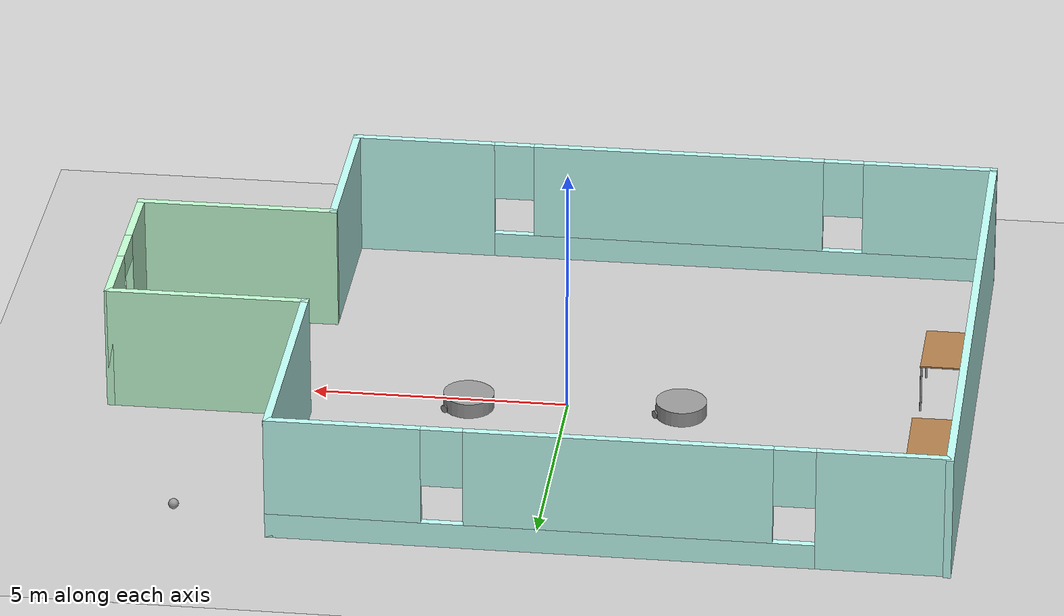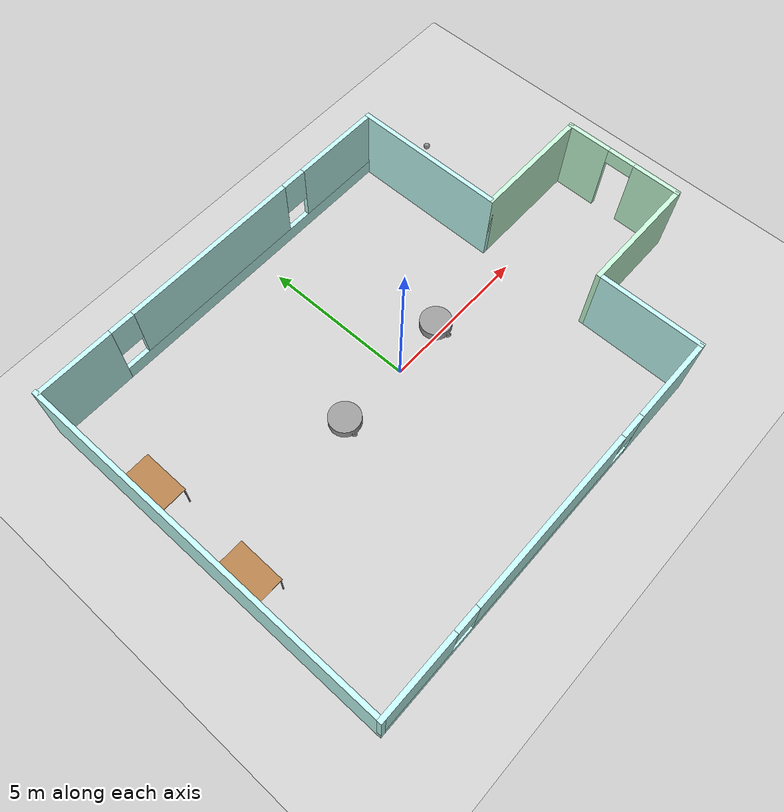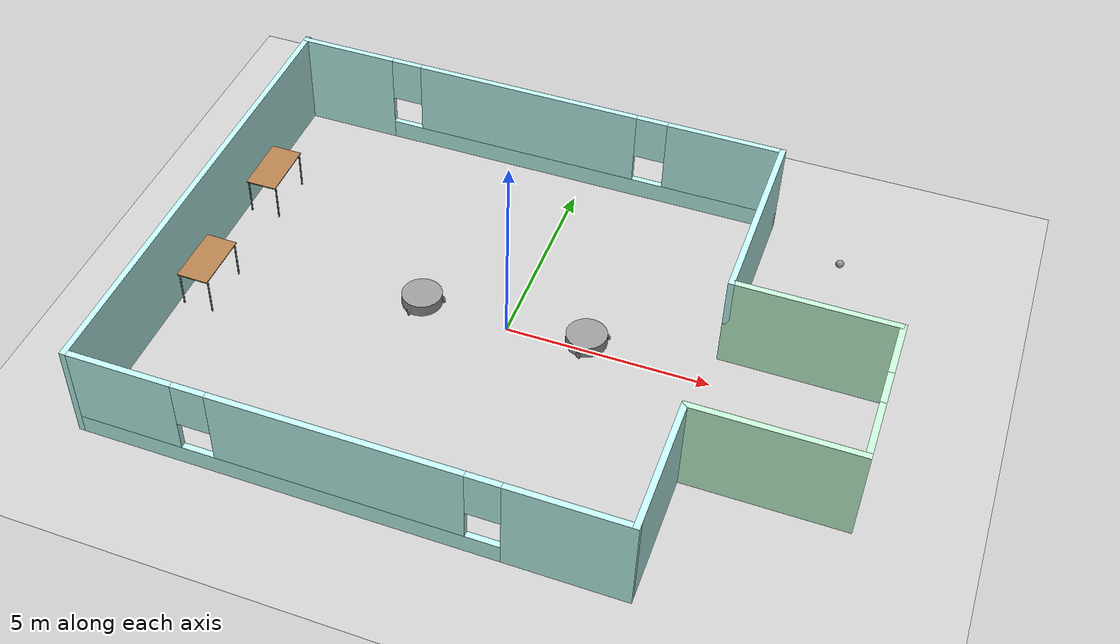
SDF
<sdf version="1.6">
 <world name="default">
  <plugin name="hello" filename="libhello.so"/>
  <light name="sun" type="directional">
   <pose>0 0 10 0 -0 0</pose>
   <diffuse>0.8 0.8 0.8 1</diffuse>
   <specular>0.2 0.2 0.2 1</specular>
   <attenuation>
    <range>1000</range>
    <constant>0.9</constant>
    <linear>0.01</linear>
    <quadratic>0.001</quadratic>
   </attenuation>
   <direction>-0.5 0.1 -0.9</direction>
  </light>
  <model name="ground_plane">
   <static>1</static>
   <link name="link">
    <collision name="collision">
     <geometry><plane><normal>0 0 1</normal><size>100 100</size></plane></geometry>
     <surface>
      <contact><collide_bitmask>65535</collide_bitmask></contact>
      <friction><ode><mu>100</mu><mu2>50</mu2></ode></friction>
     </surface>
    </collision>
    <visual name="visual">
     <cast_shadows>0</cast_shadows>
     <geometry><plane><normal>0 0 1</normal><size>100 100</size></plane></geometry>
     <material>
      <script><uri>file://media/materials/scripts/gazebo.material</uri><name>Gazebo/Grey</name></script>
     </material>
    </visual>
   </link>
  </model>
  <gravity>0 0 -9.8</gravity>
  <magnetic_field>6e-06 2.3e-05 -4.2e-05</magnetic_field>
  <atmosphere type="adiabatic"/>
  <physics name="default_physics" default="0" type="ode">
   <max_step_size>0.001</max_step_size>
   <real_time_factor>1</real_time_factor>
   <real_time_update_rate>1000</real_time_update_rate>
  </physics>
  <scene><ambient>0.4 0.4 0.4 1</ambient><background>0.7 0.7 0.7 1</background><shadows>1</shadows></scene>
  <spherical_coordinates>
   <surface_model>EARTH_WGS84</surface_model>
   <latitude_deg>0</latitude_deg>
   <longitude_deg>0</longitude_deg>
   <elevation>0</elevation>
   <heading_deg>0</heading_deg>
  </spherical_coordinates>
  <model name="myBuilding">
   <pose>0.50888 -0.21536 0 0 -0 0</pose>
   <link name="Wall_0">
    <pose>-1.925 6 0 0 -0 0</pose>
    <visual name="Wall_0_Visual_0">
     <pose>-5.21569 0 1.25 0 -0 0</pose>
     <geometry><box><size>2.56862 0.15 2.5</size></box></geometry>
     <material>
      <script><uri>file://media/materials/scripts/gazebo.material</uri><name>Gazebo/Grey</name></script>
      <ambient>0.756863 1 0.964706 1</ambient>
     </material>
     <meta><layer>0</layer></meta>
    </visual>
    <collision name="Wall_0_Collision_0">
     <geometry><box><size>2.56862 0.15 2.5</size></box></geometry>
     <pose>-5.21569 0 1.25 0 -0 0</pose>
    </collision>
    <visual name="Wall_0_Visual_1">
     <pose>1.28431 0 0.25 0 -0 0</pose>
     <geometry><box><size>10.4314 0.15 0.5</size></box></geometry>
     <material>
      <script><uri>file://media/materials/scripts/gazebo.material</uri><name>Gazebo/Grey</name></script>
      <ambient>0.756863 1 0.964706 1</ambient>
     </material>
     <meta><layer>0</layer></meta>
    </visual>
    <collision name="Wall_0_Collision_1">
     <geometry><box><size>10.4314 0.15 0.5</size></box></geometry>
     <pose>1.28431 0 0.25 0 -0 0</pose>
    </collision>
    <visual name="Wall_0_Visual_2">
     <pose>-0.206357 0 1.5 0 -0 0</pose>
     <geometry><box><size>5.85005 0.15 2</size></box></geometry>
     <material>
      <script><uri>file://media/materials/scripts/gazebo.material</uri><name>Gazebo/Grey</name></script>
      <ambient>0.756863 1 0.964706 1</ambient>
     </material>
     <meta><layer>0</layer></meta>
    </visual>
    <collision name="Wall_0_Collision_2">
     <geometry><box><size>5.85005 0.15 2</size></box></geometry>
     <pose>-0.206357 0 1.5 0 -0 0</pose>
    </collision>
    <visual name="Wall_0_Visual_3">
     <pose>5.00933 0 1.5 0 -0 0</pose>
     <geometry><box><size>2.98133 0.15 2</size></box></geometry>
     <material>
      <script><uri>file://media/materials/scripts/gazebo.material</uri><name>Gazebo/Grey</name></script>
      <ambient>0.756863 1 0.964706 1</ambient>
     </material>
     <meta><layer>0</layer></meta>
    </visual>
    <collision name="Wall_0_Collision_3">
     <geometry><box><size>2.98133 0.15 2</size></box></geometry>
     <pose>5.00933 0 1.5 0 -0 0</pose>
    </collision>
    <visual name="Wall_0_Visual_4">
     <pose>-3.53138 0 1.9 0 -0 0</pose>
     <geometry><box><size>0.8 0.15 1.2</size></box></geometry>
     <material>
      <script><uri>file://media/materials/scripts/gazebo.material</uri><name>Gazebo/Grey</name></script>
      <ambient>0.756863 1 0.964706 1</ambient>
     </material>
     <meta><layer>0</layer></meta>
    </visual>
    <collision name="Wall_0_Collision_4">
     <geometry><box><size>0.8 0.15 1.2</size></box></geometry>
     <pose>-3.53138 0 1.9 0 -0 0</pose>
    </collision>
    <visual name="Wall_0_Visual_5">
     <pose>3.11867 0 1.9 0 -0 0</pose>
     <geometry><box><size>0.8 0.15 1.2</size></box></geometry>
     <material>
      <script><uri>file://media/materials/scripts/gazebo.material</uri><name>Gazebo/Grey</name></script>
      <ambient>0.756863 1 0.964706 1</ambient>
     </material>
     <meta><layer>0</layer></meta>
    </visual>
    <collision name="Wall_0_Collision_5">
     <geometry><box><size>0.8 0.15 1.2</size></box></geometry>
     <pose>3.11867 0 1.9 0 -0 0</pose>
    </collision>
   </link>
   <link name="Wall_1">
    <collision name="Wall_1_Collision">
     <geometry><box><size>5 0.15 2.5</size></box></geometry>
     <pose>0 0 1.25 0 -0 0</pose>
    </collision>
    <visual name="Wall_1_Visual">
     <pose>0 0 1.25 0 -0 0</pose>
     <geometry><box><size>5 0.15 2.5</size></box></geometry>
     <material>
      <script><uri>file://media/materials/scripts/gazebo.material</uri><name>Gazebo/Grey</name></script>
      <ambient>0.756863 1 0.964706 1</ambient>
     </material>
     <meta><layer>0</layer></meta>
    </visual>
    <pose>4.5 3.575 0 0 0 -1.5708</pose>
   </link>
   <link name="Wall_2">
    <collision name="Wall_2_Collision">
     <geometry><box><size>4 0.15 2.5</size></box></geometry>
     <pose>0 0 1.25 0 -0 0</pose>
    </collision>
    <visual name="Wall_2_Visual">
     <pose>0 0 1.25 0 -0 0</pose>
     <geometry><box><size>4 0.15 2.5</size></box></geometry>
     <material>
      <script><uri>file://media/materials/scripts/gazebo.material</uri><name>Gazebo/Grey</name></script>
      <ambient>0.768627 1 0.835294 1</ambient>
     </material>
     <meta><layer>0</layer></meta>
    </visual>
    <pose>6.425 1.15 0 0 -0 0</pose>
   </link>
   <link name="Wall_3">
    <pose>8.35 -0.774999 0 0 0 -1.5708</pose>
    <visual name="Wall_3_Visual_0">
     <pose>-1.24503 0 1.25 0 -0 0</pose>
     <geometry><box><size>1.50994 0.15 2.5</size></box></geometry>
     <material>
      <script><uri>file://media/materials/scripts/gazebo.material</uri><name>Gazebo/Grey</name></script>
      <ambient>0.768627 1 0.835294 1</ambient>
     </material>
     <meta><layer>0</layer></meta>
    </visual>
    <collision name="Wall_3_Collision_0">
     <geometry><box><size>1.50994 0.15 2.5</size></box></geometry>
     <pose>-1.24503 0 1.25 0 -0 0</pose>
    </collision>
    <visual name="Wall_3_Visual_1">
     <pose>1.20497 0 1.25 0 -0 0</pose>
     <geometry><box><size>1.59006 0.15 2.5</size></box></geometry>
     <material>
      <script><uri>file://media/materials/scripts/gazebo.material</uri><name>Gazebo/Grey</name></script>
      <ambient>0.768627 1 0.835294 1</ambient>
     </material>
     <meta><layer>0</layer></meta>
    </visual>
    <collision name="Wall_3_Collision_1">
     <geometry><box><size>1.59006 0.15 2.5</size></box></geometry>
     <pose>1.20497 0 1.25 0 -0 0</pose>
    </collision>
    <visual name="Wall_3_Visual_2">
     <pose>-0.040058 0 2.25 0 -0 0</pose>
     <geometry><box><size>0.9 0.15 0.5</size></box></geometry>
     <material>
      <script><uri>file://media/materials/scripts/gazebo.material</uri><name>Gazebo/Grey</name></script>
      <ambient>0.768627 1 0.835294 1</ambient>
     </material>
     <meta><layer>0</layer></meta>
    </visual>
    <collision name="Wall_3_Collision_2">
     <geometry><box><size>0.9 0.15 0.5</size></box></geometry>
     <pose>-0.040058 0 2.25 0 -0 0</pose>
    </collision>
   </link>
   <link name="Wall_4">
    <collision name="Wall_4_Collision">
     <geometry><box><size>4 0.15 2.5</size></box></geometry>
     <pose>0 0 1.25 0 -0 0</pose>
    </collision>
    <visual name="Wall_4_Visual">
     <pose>0 0 1.25 0 -0 0</pose>
     <geometry><box><size>4 0.15 2.5</size></box></geometry>
     <material>
      <script><uri>file://media/materials/scripts/gazebo.material</uri><name>Gazebo/Grey</name></script>
      <ambient>0.768627 1 0.835294 1</ambient>
     </material>
     <meta><layer>0</layer></meta>
    </visual>
    <pose>6.425 -2.7 0 0 -0 3.14159</pose>
   </link>
   <link name="Wall_5">
    <collision name="Wall_5_Collision">
     <geometry><box><size>3.5 0.15 2.5</size></box></geometry>
     <pose>0 0 1.25 0 -0 0</pose>
    </collision>
    <visual name="Wall_5_Visual">
     <pose>0 0 1.25 0 -0 0</pose>
     <geometry><box><size>3.5 0.15 2.5</size></box></geometry>
     <material>
      <script><uri>file://media/materials/scripts/gazebo.material</uri><name>Gazebo/Grey</name></script>
      <ambient>0.756863 1 0.964706 1</ambient>
     </material>
     <meta><layer>0</layer></meta>
    </visual>
    <pose>4.5 -4.375 0 0 0 -1.5708</pose>
   </link>
   <link name="Wall_6">
    <pose>-1.925 -6.05 0 0 -0 3.14159</pose>
    <visual name="Wall_6_Visual_0">
     <pose>-5.06253 0 1.25 0 -0 0</pose>
     <geometry><box><size>2.87493 0.15 2.5</size></box></geometry>
     <material>
      <script><uri>file://media/materials/scripts/gazebo.material</uri><name>Gazebo/Grey</name></script>
      <ambient>0.756863 1 0.964706 1</ambient>
     </material>
     <meta><layer>0</layer></meta>
    </visual>
    <collision name="Wall_6_Collision_0">
     <geometry><box><size>2.87493 0.15 2.5</size></box></geometry>
     <pose>-5.06253 0 1.25 0 -0 0</pose>
    </collision>
    <visual name="Wall_6_Visual_1">
     <pose>1.43747 0 0.25 0 -0 0</pose>
     <geometry><box><size>10.1251 0.15 0.5</size></box></geometry>
     <material>
      <script><uri>file://media/materials/scripts/gazebo.material</uri><name>Gazebo/Grey</name></script>
      <ambient>0.756863 1 0.964706 1</ambient>
     </material>
     <meta><layer>0</layer></meta>
    </visual>
    <collision name="Wall_6_Collision_1">
     <geometry><box><size>10.1251 0.15 0.5</size></box></geometry>
     <pose>1.43747 0 0.25 0 -0 0</pose>
    </collision>
    <visual name="Wall_6_Visual_2">
     <pose>0.099956 0 1.5 0 -0 0</pose>
     <geometry><box><size>5.85005 0.15 2</size></box></geometry>
     <material>
      <script><uri>file://media/materials/scripts/gazebo.material</uri><name>Gazebo/Grey</name></script>
      <ambient>0.756863 1 0.964706 1</ambient>
     </material>
     <meta><layer>0</layer></meta>
    </visual>
    <collision name="Wall_6_Collision_2">
     <geometry><box><size>5.85005 0.15 2</size></box></geometry>
     <pose>0.099956 0 1.5 0 -0 0</pose>
    </collision>
    <visual name="Wall_6_Visual_3">
     <pose>5.16249 0 1.5 0 -0 0</pose>
     <geometry><box><size>2.67502 0.15 2</size></box></geometry>
     <material>
      <script><uri>file://media/materials/scripts/gazebo.material</uri><name>Gazebo/Grey</name></script>
      <ambient>0.756863 1 0.964706 1</ambient>
     </material>
     <meta><layer>0</layer></meta>
    </visual>
    <collision name="Wall_6_Collision_3">
     <geometry><box><size>2.67502 0.15 2</size></box></geometry>
     <pose>5.16249 0 1.5 0 -0 0</pose>
    </collision>
    <visual name="Wall_6_Visual_4">
     <pose>-3.22507 0 1.9 0 -0 0</pose>
     <geometry><box><size>0.8 0.15 1.2</size></box></geometry>
     <material>
      <script><uri>file://media/materials/scripts/gazebo.material</uri><name>Gazebo/Grey</name></script>
      <ambient>0.756863 1 0.964706 1</ambient>
     </material>
     <meta><layer>0</layer></meta>
    </visual>
    <collision name="Wall_6_Collision_4">
     <geometry><box><size>0.8 0.15 1.2</size></box></geometry>
     <pose>-3.22507 0 1.9 0 -0 0</pose>
    </collision>
    <visual name="Wall_6_Visual_5">
     <pose>3.42498 0 1.9 0 -0 0</pose>
     <geometry><box><size>0.8 0.15 1.2</size></box></geometry>
     <material>
      <script><uri>file://media/materials/scripts/gazebo.material</uri><name>Gazebo/Grey</name></script>
      <ambient>0.756863 1 0.964706 1</ambient>
     </material>
     <meta><layer>0</layer></meta>
    </visual>
    <collision name="Wall_6_Collision_5">
     <geometry><box><size>0.8 0.15 1.2</size></box></geometry>
     <pose>3.42498 0 1.9 0 -0 0</pose>
    </collision>
   </link>
   <link name="Wall_7">
    <collision name="Wall_7_Collision">
     <geometry><box><size>12.25 0.15 2.5</size></box></geometry>
     <pose>0 0 1.25 0 -0 0</pose>
    </collision>
    <visual name="Wall_7_Visual">
     <pose>0 0 1.25 0 -0 0</pose>
     <geometry><box><size>12.25 0.15 2.5</size></box></geometry>
     <material>
      <script><uri>file://media/materials/scripts/gazebo.material</uri><name>Gazebo/Grey</name></script>
      <ambient>0.756863 1 0.964706 1</ambient>
     </material>
     <meta><layer>0</layer></meta>
    </visual>
    <pose>-8.35 0 0 0 -0 1.5708</pose>
   </link>
   <static>1</static>
  </model>
  <model name="table">
   <static>1</static>
   <link name="link">
    <collision name="surface">
     <pose>0 0 1 0 -0 0</pose>
     <geometry><box><size>1.5 0.8 0.03</size></box></geometry>
     <surface><friction><ode><mu>0.6</mu><mu2>0.6</mu2></ode></friction></surface>
    </collision>
    <visual name="visual1">
     <pose>0 0 1 0 -0 0</pose>
     <geometry><box><size>1.5 0.8 0.03</size></box></geometry>
     <material>
      <script><uri>file://media/materials/scripts/gazebo.material</uri><name>Gazebo/Wood</name></script>
     </material>
    </visual>
    <collision name="front_left_leg">
     <pose>0.68 0.38 0.5 0 -0 0</pose>
     <geometry><cylinder><radius>0.02</radius><length>1</length></cylinder></geometry>
    </collision>
    <visual name="front_left_leg">
     <pose>0.68 0.38 0.5 0 -0 0</pose>
     <geometry><cylinder><radius>0.02</radius><length>1</length></cylinder></geometry>
     <material>
      <script><uri>file://media/materials/scripts/gazebo.material</uri><name>Gazebo/Grey</name></script>
     </material>
    </visual>
    <collision name="front_right_leg">
     <pose>0.68 -0.38 0.5 0 -0 0</pose>
     <geometry><cylinder><radius>0.02</radius><length>1</length></cylinder></geometry>
    </collision>
    <visual name="front_right_leg">
     <pose>0.68 -0.38 0.5 0 -0 0</pose>
     <geometry><cylinder><radius>0.02</radius><length>1</length></cylinder></geometry>
     <material>
      <script><uri>file://media/materials/scripts/gazebo.material</uri><name>Gazebo/Grey</name></script>
     </material>
    </visual>
    <collision name="back_right_leg">
     <pose>-0.68 -0.38 0.5 0 -0 0</pose>
     <geometry><cylinder><radius>0.02</radius><length>1</length></cylinder></geometry>
    </collision>
    <visual name="back_right_leg">
     <pose>-0.68 -0.38 0.5 0 -0 0</pose>
     <geometry><cylinder><radius>0.02</radius><length>1</length></cylinder></geometry>
     <material>
      <script><uri>file://media/materials/scripts/gazebo.material</uri><name>Gazebo/Grey</name></script>
     </material>
    </visual>
    <collision name="back_left_leg">
     <pose>-0.68 0.38 0.5 0 -0 0</pose>
     <geometry><cylinder><radius>0.02</radius><length>1</length></cylinder></geometry>
    </collision>
    <visual name="back_left_leg">
     <pose>-0.68 0.38 0.5 0 -0 0</pose>
     <geometry><cylinder><radius>0.02</radius><length>1</length></cylinder></geometry>
     <material>
      <script><uri>file://media/materials/scripts/gazebo.material</uri><name>Gazebo/Grey</name></script>
     </material>
    </visual>
   </link>
   <pose>-7.2407 2.31732 0 0 -0 1.57218</pose>
  </model>
  <model name="table_0">
   <static>1</static>
   <link name="link">
    <collision name="surface">
     <pose>0 0 1 0 -0 0</pose>
     <geometry><box><size>1.5 0.8 0.03</size></box></geometry>
     <surface><friction><ode><mu>0.6</mu><mu2>0.6</mu2></ode></friction></surface>
    </collision>
    <visual name="visual1">
     <pose>0 0 1 0 -0 0</pose>
     <geometry><box><size>1.5 0.8 0.03</size></box></geometry>
     <material>
      <script><uri>file://media/materials/scripts/gazebo.material</uri><name>Gazebo/Wood</name></script>
     </material>
    </visual>
    <collision name="front_left_leg">
     <pose>0.68 0.38 0.5 0 -0 0</pose>
     <geometry><cylinder><radius>0.02</radius><length>1</length></cylinder></geometry>
    </collision>
    <visual name="front_left_leg">
     <pose>0.68 0.38 0.5 0 -0 0</pose>
     <geometry><cylinder><radius>0.02</radius><length>1</length></cylinder></geometry>
     <material>
      <script><uri>file://media/materials/scripts/gazebo.material</uri><name>Gazebo/Grey</name></script>
     </material>
    </visual>
    <collision name="front_right_leg">
     <pose>0.68 -0.38 0.5 0 -0 0</pose>
     <geometry><cylinder><radius>0.02</radius><length>1</length></cylinder></geometry>
    </collision>
    <visual name="front_right_leg">
     <pose>0.68 -0.38 0.5 0 -0 0</pose>
     <geometry><cylinder><radius>0.02</radius><length>1</length></cylinder></geometry>
     <material>
      <script><uri>file://media/materials/scripts/gazebo.material</uri><name>Gazebo/Grey</name></script>
     </material>
    </visual>
    <collision name="back_right_leg">
     <pose>-0.68 -0.38 0.5 0 -0 0</pose>
     <geometry><cylinder><radius>0.02</radius><length>1</length></cylinder></geometry>
    </collision>
    <visual name="back_right_leg">
     <pose>-0.68 -0.38 0.5 0 -0 0</pose>
     <geometry><cylinder><radius>0.02</radius><length>1</length></cylinder></geometry>
     <material>
      <script><uri>file://media/materials/scripts/gazebo.material</uri><name>Gazebo/Grey</name></script>
     </material>
    </visual>
    <collision name="back_left_leg">
     <pose>-0.68 0.38 0.5 0 -0 0</pose>
     <geometry><cylinder><radius>0.02</radius><length>1</length></cylinder></geometry>
    </collision>
    <visual name="back_left_leg">
     <pose>-0.68 0.38 0.5 0 -0 0</pose>
     <geometry><cylinder><radius>0.02</radius><length>1</length></cylinder></geometry>
     <material>
      <script><uri>file://media/materials/scripts/gazebo.material</uri><name>Gazebo/Grey</name></script>
     </material>
    </visual>
   </link>
   <pose>-7.24339 -1.28587 0 0 0 -1.58123</pose>
  </model>
  <model name="VacuumRobot">
   <link name="link_0">
    <pose>-0.010873 -2.28364 0.553866 0 -0 0</pose>
    <inertial>
     <mass>1</mass>
     <inertia><ixx>0.145833</ixx><ixy>0</ixy><ixz>0</ixz><iyy>0.145833</iyy><iyz>0</iyz><izz>0.125</izz></inertia>
    </inertial>
    <visual name="visual">
     <geometry><cylinder><radius>0.5</radius><length>0.3</length></cylinder></geometry>
     <material>
      <lighting>1</lighting>
      <script><uri>file://media/materials/scripts/gazebo.material</uri><name>Gazebo/Grey</name></script>
      <shader type="pixel"><normal_map>__default__</normal_map></shader>
      <ambient>0.3 0.3 0.3 1</ambient>
      <diffuse>0.7 0.7 0.7 1</diffuse>
      <specular>0.01 0.01 0.01 1</specular>
      <emissive>0 0 0 1</emissive>
     </material>
    </visual>
    <collision name="collision">
     <geometry><cylinder><radius>0.5</radius><length>0.3</length></cylinder></geometry>
     <surface>
      <friction>
       <ode><mu>1</mu><mu2>1</mu2><fdir1>0 0 0</fdir1><slip1>0</slip1><slip2>0</slip2></ode>
       <torsional>
        <coefficient>1</coefficient>
        <patch_radius>0</patch_radius>
        <surface_radius>0</surface_radius>
        <use_patch_radius>1</use_patch_radius>
        <ode><slip>0</slip></ode>
       </torsional>
      </friction>
      <bounce><restitution_coefficient>0</restitution_coefficient><threshold>1e+06</threshold></bounce>
      <contact>
       <collide_without_contact>0</collide_without_contact>
       <collide_without_contact_bitmask>1</collide_without_contact_bitmask>
       <collide_bitmask>1</collide_bitmask>
       <ode>
        <soft_cfm>0</soft_cfm>
        <soft_erp>0.2</soft_erp>
        <kp>1e+13</kp>
        <kd>1</kd>
        <max_vel>0.01</max_vel>
        <min_depth>0</min_depth>
       </ode>
       <bullet>
        <split_impulse>1</split_impulse>
        <split_impulse_penetration_threshold>-0.01</split_impulse_penetration_threshold>
        <soft_cfm>0</soft_cfm>
        <soft_erp>0.2</soft_erp>
        <kp>1e+13</kp>
        <kd>1</kd>
       </bullet>
      </contact>
     </surface>
    </collision>
   </link>
   <link name="link_2">
    <pose>-0.47356 -2.54265 0.466165 0 -1.54019 0</pose>
    <inertial>
     <mass>0.00089413</mass>
     <inertia>
      <ixx>1.48e-06</ixx>
      <ixy>0</ixy>
      <ixz>0</ixz>
      <iyy>1.48e-06</iyy>
      <iyz>0</iyz>
      <izz>2.76e-06</izz>
     </inertia>
    </inertial>
    <visual name="visual">
     <geometry><cylinder><radius>0.0786342</radius><length>0.0361282</length></cylinder></geometry>
     <material>
      <lighting>1</lighting>
      <script><uri>file://media/materials/scripts/gazebo.material</uri><name>Gazebo/Grey</name></script>
      <shader type="pixel"><normal_map>__default__</normal_map></shader>
      <ambient>0.3 0.3 0.3 1</ambient>
      <diffuse>0.7 0.7 0.7 1</diffuse>
      <specular>0.01 0.01 0.01 1</specular>
      <emissive>0 0 0 1</emissive>
     </material>
    </visual>
    <collision name="collision">
     <geometry><cylinder><radius>0.078634</radius><length>0.036128</length></cylinder></geometry>
     <surface>
      <friction>
       <ode><mu>1</mu><mu2>1</mu2><fdir1>0 0 0</fdir1><slip1>0</slip1><slip2>0</slip2></ode>
       <torsional>
        <coefficient>1</coefficient>
        <patch_radius>0</patch_radius>
        <surface_radius>0</surface_radius>
        <use_patch_radius>1</use_patch_radius>
        <ode><slip>0</slip></ode>
       </torsional>
      </friction>
      <bounce><restitution_coefficient>0</restitution_coefficient><threshold>1e+06</threshold></bounce>
      <contact>
       <collide_without_contact>0</collide_without_contact>
       <collide_without_contact_bitmask>1</collide_without_contact_bitmask>
       <collide_bitmask>1</collide_bitmask>
       <ode>
        <soft_cfm>0</soft_cfm>
        <soft_erp>0.2</soft_erp>
        <kp>1e+13</kp>
        <kd>1</kd>
        <max_vel>0.01</max_vel>
        <min_depth>0</min_depth>
       </ode>
       <bullet>
        <split_impulse>1</split_impulse>
        <split_impulse_penetration_threshold>-0.01</split_impulse_penetration_threshold>
        <soft_cfm>0</soft_cfm>
        <soft_erp>0.2</soft_erp>
        <kp>1e+13</kp>
        <kd>1</kd>
       </bullet>
      </contact>
     </surface>
    </collision>
   </link>
   <link name="link_2_clone">
    <pose>0.468974 -2.49653 0.46497 0 -1.54019 0</pose>
    <inertial>
     <mass>0.00089413</mass>
     <inertia>
      <ixx>1.48e-06</ixx>
      <ixy>0</ixy>
      <ixz>0</ixz>
      <iyy>1.48e-06</iyy>
      <iyz>0</iyz>
      <izz>2.76e-06</izz>
     </inertia>
    </inertial>
    <visual name="visual">
     <geometry><cylinder><radius>0.0786342</radius><length>0.0361282</length></cylinder></geometry>
     <material>
      <lighting>1</lighting>
      <script><uri>file://media/materials/scripts/gazebo.material</uri><name>Gazebo/Grey</name></script>
      <shader type="pixel"><normal_map>__default__</normal_map></shader>
      <ambient>0.3 0.3 0.3 1</ambient>
      <diffuse>0.7 0.7 0.7 1</diffuse>
      <specular>0.01 0.01 0.01 1</specular>
      <emissive>0 0 0 1</emissive>
     </material>
    </visual>
    <collision name="collision">
     <geometry><cylinder><radius>0.078634</radius><length>0.036128</length></cylinder></geometry>
     <surface>
      <friction>
       <ode><mu>1</mu><mu2>1</mu2><fdir1>0 0 0</fdir1><slip1>0</slip1><slip2>0</slip2></ode>
       <torsional>
        <coefficient>1</coefficient>
        <patch_radius>0</patch_radius>
        <surface_radius>0</surface_radius>
        <use_patch_radius>1</use_patch_radius>
        <ode><slip>0</slip></ode>
       </torsional>
      </friction>
      <bounce><restitution_coefficient>0</restitution_coefficient><threshold>1e+06</threshold></bounce>
      <contact>
       <collide_without_contact>0</collide_without_contact>
       <collide_without_contact_bitmask>1</collide_without_contact_bitmask>
       <collide_bitmask>1</collide_bitmask>
       <ode>
        <soft_cfm>0</soft_cfm>
        <soft_erp>0.2</soft_erp>
        <kp>1e+13</kp>
        <kd>1</kd>
        <max_vel>0.01</max_vel>
        <min_depth>0</min_depth>
       </ode>
       <bullet>
        <split_impulse>1</split_impulse>
        <split_impulse_penetration_threshold>-0.01</split_impulse_penetration_threshold>
        <soft_cfm>0</soft_cfm>
        <soft_erp>0.2</soft_erp>
        <kp>1e+13</kp>
        <kd>1</kd>
       </bullet>
      </contact>
     </surface>
    </collision>
   </link>
   <joint name="link_0_JOINT_5" type="revolute">
    <parent>link_0</parent>
    <child>link_2</child>
    <axis>
     <xyz>0 0 1</xyz>
     <use_parent_model_frame>0</use_parent_model_frame>
     <limit>
      <lower>-1.79769e+308</lower>
      <upper>1.79769e+308</upper>
      <effort>-1</effort>
      <velocity>-1</velocity>
     </limit>
     <dynamics>
      <spring_reference>0</spring_reference>
      <spring_stiffness>0</spring_stiffness>
      <damping>0</damping>
      <friction>0</friction>
     </dynamics>
    </axis>
    <physics>
     <ode><limit><cfm>0</cfm><erp>0.2</erp></limit><suspension><cfm>0</cfm><erp>0.2</erp></suspension></ode>
    </physics>
   </joint>
   <joint name="link_0_JOINT_6" type="revolute">
    <parent>link_0</parent>
    <child>link_2_clone</child>
    <axis>
     <xyz>1 0 0</xyz>
     <use_parent_model_frame>0</use_parent_model_frame>
     <limit>
      <lower>-1.79769e+308</lower>
      <upper>1.79769e+308</upper>
      <effort>-1</effort>
      <velocity>-1</velocity>
     </limit>
     <dynamics>
      <spring_reference>0</spring_reference>
      <spring_stiffness>0</spring_stiffness>
      <damping>0</damping>
     </dynamics>
    </axis>
    <physics>
     <ode><limit><cfm>0</cfm><erp>0.2</erp></limit><suspension><cfm>0</cfm><erp>0.2</erp></suspension></ode>
    </physics>
   </joint>
   <static>0</static>
   <pose>-3.82456 1.74891 -0.444772 -0.023049 -0.002526 0.777225</pose>
  </model>
  <model name="VacuumRobot_0">
   <link name="link_0">
    <pose>-0.010873 -2.28364 0.553866 0 -0 0</pose>
    <inertial>
     <mass>1</mass>
     <inertia><ixx>0.145833</ixx><ixy>0</ixy><ixz>0</ixz><iyy>0.145833</iyy><iyz>0</iyz><izz>0.125</izz></inertia>
    </inertial>
    <visual name="visual">
     <geometry><cylinder><radius>0.5</radius><length>0.3</length></cylinder></geometry>
     <material>
      <lighting>1</lighting>
      <script><uri>file://media/materials/scripts/gazebo.material</uri><name>Gazebo/Grey</name></script>
      <shader type="pixel"><normal_map>__default__</normal_map></shader>
      <ambient>0.3 0.3 0.3 1</ambient>
      <diffuse>0.7 0.7 0.7 1</diffuse>
      <specular>0.01 0.01 0.01 1</specular>
      <emissive>0 0 0 1</emissive>
     </material>
    </visual>
    <collision name="collision">
     <geometry><cylinder><radius>0.5</radius><length>0.3</length></cylinder></geometry>
     <surface>
      <friction>
       <ode><mu>1</mu><mu2>1</mu2><fdir1>0 0 0</fdir1><slip1>0</slip1><slip2>0</slip2></ode>
       <torsional>
        <coefficient>1</coefficient>
        <patch_radius>0</patch_radius>
        <surface_radius>0</surface_radius>
        <use_patch_radius>1</use_patch_radius>
        <ode><slip>0</slip></ode>
       </torsional>
      </friction>
      <bounce><restitution_coefficient>0</restitution_coefficient><threshold>1e+06</threshold></bounce>
      <contact>
       <collide_without_contact>0</collide_without_contact>
       <collide_without_contact_bitmask>1</collide_without_contact_bitmask>
       <collide_bitmask>1</collide_bitmask>
       <ode>
        <soft_cfm>0</soft_cfm>
        <soft_erp>0.2</soft_erp>
        <kp>1e+13</kp>
        <kd>1</kd>
        <max_vel>0.01</max_vel>
        <min_depth>0</min_depth>
       </ode>
       <bullet>
        <split_impulse>1</split_impulse>
        <split_impulse_penetration_threshold>-0.01</split_impulse_penetration_threshold>
        <soft_cfm>0</soft_cfm>
        <soft_erp>0.2</soft_erp>
        <kp>1e+13</kp>
        <kd>1</kd>
       </bullet>
      </contact>
     </surface>
    </collision>
   </link>
   <link name="link_2">
    <pose>-0.47356 -2.54265 0.466165 0 -1.54019 0</pose>
    <inertial>
     <mass>0.00089413</mass>
     <inertia>
      <ixx>1.48e-06</ixx>
      <ixy>0</ixy>
      <ixz>0</ixz>
      <iyy>1.48e-06</iyy>
      <iyz>0</iyz>
      <izz>2.76e-06</izz>
     </inertia>
    </inertial>
    <visual name="visual">
     <geometry><cylinder><radius>0.0786342</radius><length>0.0361282</length></cylinder></geometry>
     <material>
      <lighting>1</lighting>
      <script><uri>file://media/materials/scripts/gazebo.material</uri><name>Gazebo/Grey</name></script>
      <shader type="pixel"><normal_map>__default__</normal_map></shader>
      <ambient>0.3 0.3 0.3 1</ambient>
      <diffuse>0.7 0.7 0.7 1</diffuse>
      <specular>0.01 0.01 0.01 1</specular>
      <emissive>0 0 0 1</emissive>
     </material>
    </visual>
    <collision name="collision">
     <geometry><cylinder><radius>0.078634</radius><length>0.036128</length></cylinder></geometry>
     <surface>
      <friction>
       <ode><mu>1</mu><mu2>1</mu2><fdir1>0 0 0</fdir1><slip1>0</slip1><slip2>0</slip2></ode>
       <torsional>
        <coefficient>1</coefficient>
        <patch_radius>0</patch_radius>
        <surface_radius>0</surface_radius>
        <use_patch_radius>1</use_patch_radius>
        <ode><slip>0</slip></ode>
       </torsional>
      </friction>
      <bounce><restitution_coefficient>0</restitution_coefficient><threshold>1e+06</threshold></bounce>
      <contact>
       <collide_without_contact>0</collide_without_contact>
       <collide_without_contact_bitmask>1</collide_without_contact_bitmask>
       <collide_bitmask>1</collide_bitmask>
       <ode>
        <soft_cfm>0</soft_cfm>
        <soft_erp>0.2</soft_erp>
        <kp>1e+13</kp>
        <kd>1</kd>
        <max_vel>0.01</max_vel>
        <min_depth>0</min_depth>
       </ode>
       <bullet>
        <split_impulse>1</split_impulse>
        <split_impulse_penetration_threshold>-0.01</split_impulse_penetration_threshold>
        <soft_cfm>0</soft_cfm>
        <soft_erp>0.2</soft_erp>
        <kp>1e+13</kp>
        <kd>1</kd>
       </bullet>
      </contact>
     </surface>
    </collision>
   </link>
   <link name="link_2_clone">
    <pose>0.468974 -2.49653 0.46497 0 -1.54019 0</pose>
    <inertial>
     <mass>0.00089413</mass>
     <inertia>
      <ixx>1.48e-06</ixx>
      <ixy>0</ixy>
      <ixz>0</ixz>
      <iyy>1.48e-06</iyy>
      <iyz>0</iyz>
      <izz>2.76e-06</izz>
     </inertia>
    </inertial>
    <visual name="visual">
     <geometry><cylinder><radius>0.0786342</radius><length>0.0361282</length></cylinder></geometry>
     <material>
      <lighting>1</lighting>
      <script><uri>file://media/materials/scripts/gazebo.material</uri><name>Gazebo/Grey</name></script>
      <shader type="pixel"><normal_map>__default__</normal_map></shader>
      <ambient>0.3 0.3 0.3 1</ambient>
      <diffuse>0.7 0.7 0.7 1</diffuse>
      <specular>0.01 0.01 0.01 1</specular>
      <emissive>0 0 0 1</emissive>
     </material>
    </visual>
    <collision name="collision">
     <geometry><cylinder><radius>0.078634</radius><length>0.036128</length></cylinder></geometry>
     <surface>
      <friction>
       <ode><mu>1</mu><mu2>1</mu2><fdir1>0 0 0</fdir1><slip1>0</slip1><slip2>0</slip2></ode>
       <torsional>
        <coefficient>1</coefficient>
        <patch_radius>0</patch_radius>
        <surface_radius>0</surface_radius>
        <use_patch_radius>1</use_patch_radius>
        <ode><slip>0</slip></ode>
       </torsional>
      </friction>
      <bounce><restitution_coefficient>0</restitution_coefficient><threshold>1e+06</threshold></bounce>
      <contact>
       <collide_without_contact>0</collide_without_contact>
       <collide_without_contact_bitmask>1</collide_without_contact_bitmask>
       <collide_bitmask>1</collide_bitmask>
       <ode>
        <soft_cfm>0</soft_cfm>
        <soft_erp>0.2</soft_erp>
        <kp>1e+13</kp>
        <kd>1</kd>
        <max_vel>0.01</max_vel>
        <min_depth>0</min_depth>
       </ode>
       <bullet>
        <split_impulse>1</split_impulse>
        <split_impulse_penetration_threshold>-0.01</split_impulse_penetration_threshold>
        <soft_cfm>0</soft_cfm>
        <soft_erp>0.2</soft_erp>
        <kp>1e+13</kp>
        <kd>1</kd>
       </bullet>
      </contact>
     </surface>
    </collision>
   </link>
   <joint name="link_0_JOINT_5" type="revolute">
    <parent>link_0</parent>
    <child>link_2</child>
    <axis>
     <xyz>0 0 1</xyz>
     <use_parent_model_frame>0</use_parent_model_frame>
     <limit>
      <lower>-1.79769e+308</lower>
      <upper>1.79769e+308</upper>
      <effort>-1</effort>
      <velocity>-1</velocity>
     </limit>
     <dynamics>
      <spring_reference>0</spring_reference>
      <spring_stiffness>0</spring_stiffness>
      <damping>0</damping>
      <friction>0</friction>
     </dynamics>
    </axis>
    <physics>
     <ode><limit><cfm>0</cfm><erp>0.2</erp></limit><suspension><cfm>0</cfm><erp>0.2</erp></suspension></ode>
    </physics>
   </joint>
   <joint name="link_0_JOINT_6" type="revolute">
    <parent>link_0</parent>
    <child>link_2_clone</child>
    <axis>
     <xyz>1 0 0</xyz>
     <use_parent_model_frame>0</use_parent_model_frame>
     <limit>
      <lower>-1.79769e+308</lower>
      <upper>1.79769e+308</upper>
      <effort>-1</effort>
      <velocity>-1</velocity>
     </limit>
     <dynamics>
      <spring_reference>0</spring_reference>
      <spring_stiffness>0</spring_stiffness>
      <damping>0</damping>
     </dynamics>
    </axis>
    <physics>
     <ode><limit><cfm>0</cfm><erp>0.2</erp></limit><suspension><cfm>0</cfm><erp>0.2</erp></suspension></ode>
    </physics>
   </joint>
   <static>0</static>
   <pose>0.001957 1.49093 -0.444727 -0.023024 -0.002465 1.00405</pose>
  </model>
  <model name="my_ball">
   <link name="link_0">
    <inertial>
     <mass>1</mass>
     <inertia><ixx>0.1</ixx><ixy>0</ixy><ixz>0</ixz><iyy>0.1</iyy><iyz>0</iyz><izz>0.1</izz></inertia>
    </inertial>
    <visual name="visual">
     <geometry><sphere><radius>0.1</radius></sphere></geometry>
     <material>
      <lighting>1</lighting>
      <script><uri>file://media/materials/scripts/gazebo.material</uri><name>Gazebo/Grey</name></script>
      <shader type="pixel"><normal_map>__default__</normal_map></shader>
      <ambient>1 1 1 1</ambient>
      <diffuse>1 1 1 1</diffuse>
      <specular>1 1 1 1</specular>
      <emissive>1 1 1 1</emissive>
     </material>
    </visual>
    <collision name="collision">
     <geometry><sphere><radius>0.1</radius></sphere></geometry>
     <surface>
      <friction>
       <ode><mu>1</mu><mu2>1</mu2><fdir1>0 0 0</fdir1><slip1>0</slip1><slip2>0</slip2></ode>
       <torsional>
        <coefficient>1</coefficient>
        <patch_radius>0</patch_radius>
        <surface_radius>0</surface_radius>
        <use_patch_radius>1</use_patch_radius>
        <ode><slip>0</slip></ode>
       </torsional>
      </friction>
      <bounce><restitution_coefficient>0</restitution_coefficient><threshold>1e+06</threshold></bounce>
      <contact>
       <collide_without_contact>0</collide_without_contact>
       <collide_without_contact_bitmask>1</collide_without_contact_bitmask>
       <collide_bitmask>1</collide_bitmask>
       <ode>
        <soft_cfm>0</soft_cfm>
        <soft_erp>0.2</soft_erp>
        <kp>1e+13</kp>
        <kd>1</kd>
        <max_vel>0.01</max_vel>
        <min_depth>0</min_depth>
       </ode>
       <bullet>
        <split_impulse>1</split_impulse>
        <split_impulse_penetration_threshold>-0.01</split_impulse_penetration_threshold>
        <soft_cfm>0</soft_cfm>
        <soft_erp>0.2</soft_erp>
        <kp>1e+13</kp>
        <kd>1</kd>
       </bullet>
      </contact>
     </surface>
    </collision>
   </link>
   <static>0</static>
   <pose>6.97483 4.95658 0.1 0 -0 0</pose>
  </model>
  <plugin filename="libcollision_map_creator.so" name="collision_map_creator"/>
 </world>
</sdf>
